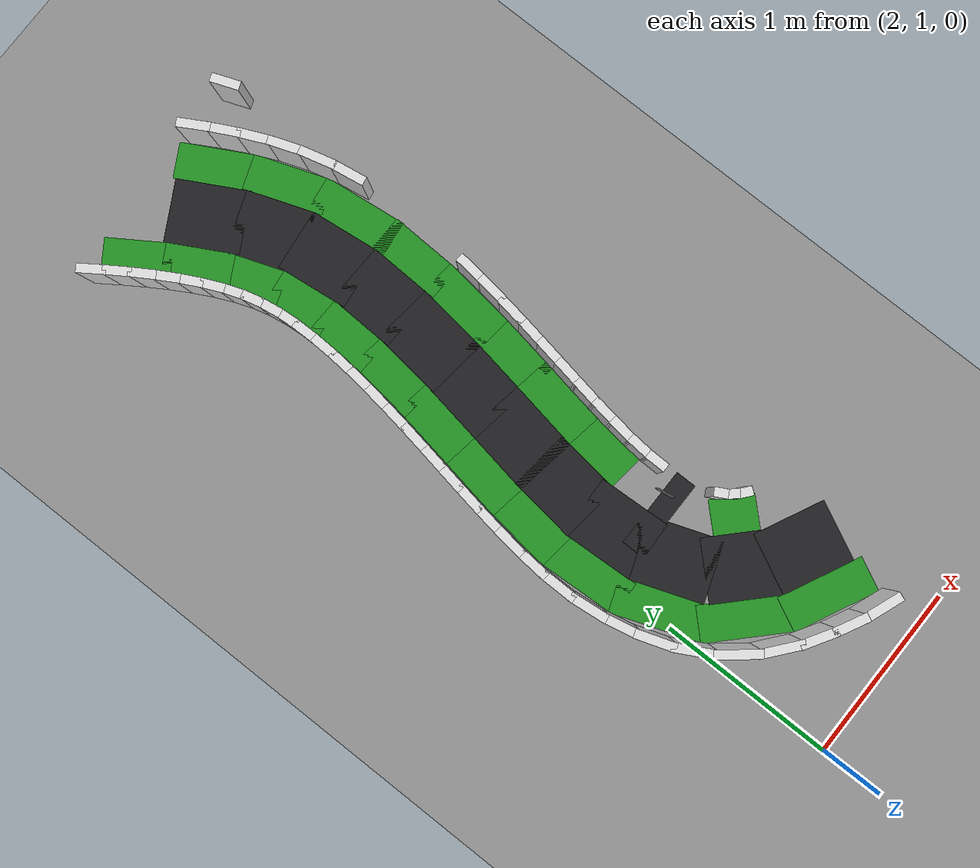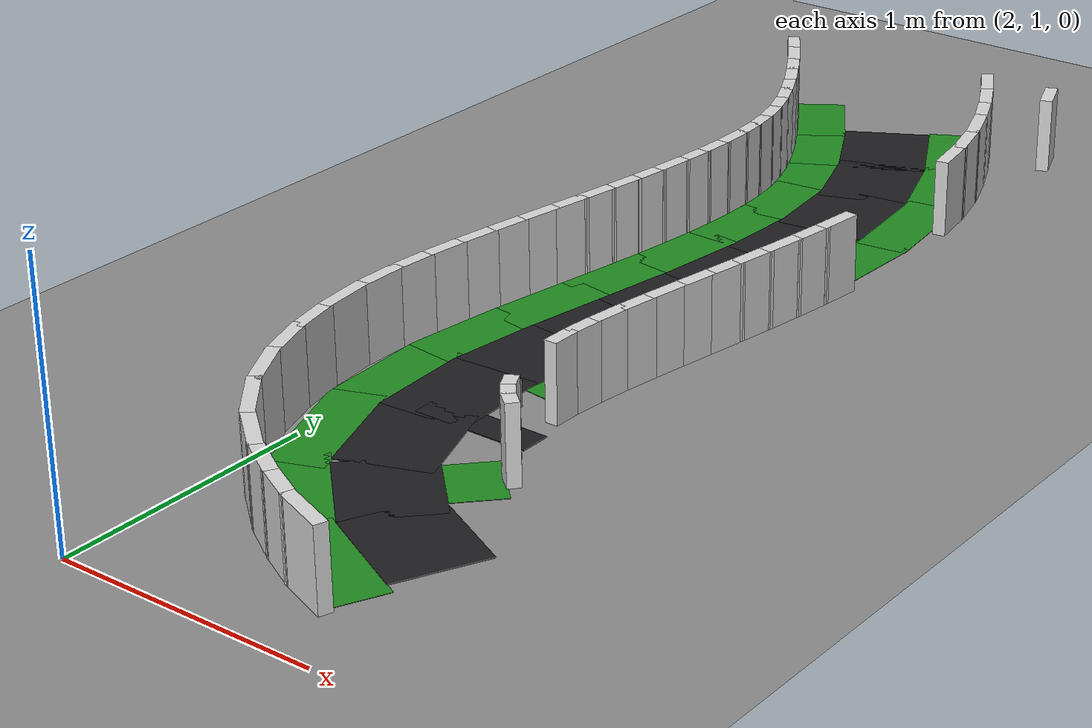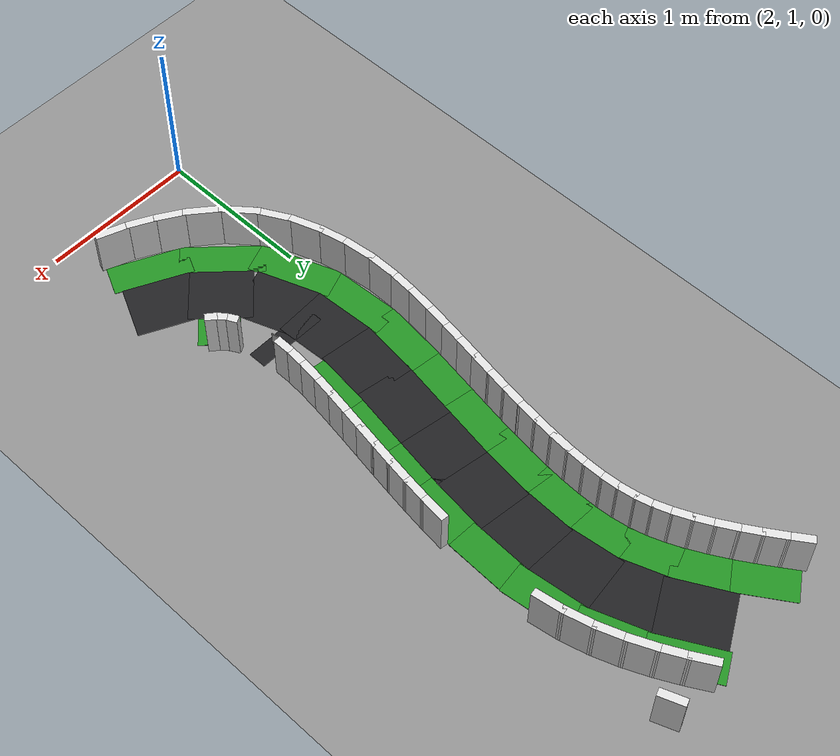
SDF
<sdf version="1.8">
 <world name="it_arena_track">
  <model name="it_arena_track_static">
   <static>true</static>
   <link name="ground_plane_link">
    <collision name="ground_collision">
     <geometry><plane><normal>0 0 1</normal><size>30 30</size></plane></geometry>
    </collision>
    <visual name="ground_visual">
     <geometry><plane><normal>0 0 1</normal><size>30 30</size></plane></geometry>
     <material><ambient>0.55 0.55 0.55 1</ambient><diffuse>0.55 0.55 0.55 1</diffuse></material>
    </visual>
   </link>
   <link name="surface_main_85">
    <pose>2.1909 5.2769 0.0015 0 0 -1.07373</pose>
    <collision name="surface_main_85_col">
     <geometry><box><size>0.4137 0.3500 0.0030</size></box></geometry>
    </collision>
    <visual name="surface_main_85_vis">
     <geometry><box><size>0.4137 0.3500 0.0030</size></box></geometry>
     <material><ambient>0.12 0.12 0.13 1</ambient><diffuse>0.12 0.12 0.13 1</diffuse></material>
    </visual>
   </link>
   <link name="surface_main_86">
    <pose>2.3340 4.9590 0.0015 0 0 -1.22621</pose>
    <collision name="surface_main_86_col">
     <geometry><box><size>0.3903 0.3500 0.0030</size></box></geometry>
    </collision>
    <visual name="surface_main_86_vis">
     <geometry><box><size>0.3903 0.3500 0.0030</size></box></geometry>
     <material><ambient>0.12 0.12 0.13 1</ambient><diffuse>0.12 0.12 0.13 1</diffuse></material>
    </visual>
   </link>
   <link name="surface_main_87">
    <pose>2.4124 4.6209 0.0015 0 0 -1.45323</pose>
    <collision name="surface_main_87_col">
     <geometry><box><size>0.4132 0.3500 0.0030</size></box></geometry>
    </collision>
    <visual name="surface_main_87_vis">
     <geometry><box><size>0.4132 0.3500 0.0030</size></box></geometry>
     <material><ambient>0.12 0.12 0.13 1</ambient><diffuse>0.12 0.12 0.13 1</diffuse></material>
    </visual>
   </link>
   <link name="surface_main_88">
    <pose>2.4273 4.2727 0.0015 0 0 -1.60720</pose>
    <collision name="surface_main_88_col">
     <geometry><box><size>0.3908 0.3500 0.0030</size></box></geometry>
    </collision>
    <visual name="surface_main_88_vis">
     <geometry><box><size>0.3908 0.3500 0.0030</size></box></geometry>
     <material><ambient>0.12 0.12 0.13 1</ambient><diffuse>0.12 0.12 0.13 1</diffuse></material>
    </visual>
   </link>
   <link name="surface_main_89">
    <pose>2.3994 3.9243 0.0015 0 0 -1.69189</pose>
    <collision name="surface_main_89_col">
     <geometry><box><size>0.4139 0.3500 0.0030</size></box></geometry>
    </collision>
    <visual name="surface_main_89_vis">
     <geometry><box><size>0.4139 0.3500 0.0030</size></box></geometry>
     <material><ambient>0.12 0.12 0.13 1</ambient><diffuse>0.12 0.12 0.13 1</diffuse></material>
    </visual>
   </link>
   <link name="surface_main_90">
    <pose>2.3502 3.5779 0.0015 0 0 -1.73290</pose>
    <collision name="surface_main_90_col">
     <geometry><box><size>0.3909 0.3500 0.0030</size></box></geometry>
    </collision>
    <visual name="surface_main_90_vis">
     <geometry><box><size>0.3909 0.3500 0.0030</size></box></geometry>
     <material><ambient>0.12 0.12 0.13 1</ambient><diffuse>0.12 0.12 0.13 1</diffuse></material>
    </visual>
   </link>
   <link name="surface_main_91">
    <pose>2.2930 3.2327 0.0015 0 0 -1.73713</pose>
    <collision name="surface_main_91_col">
     <geometry><box><size>0.4139 0.3500 0.0030</size></box></geometry>
    </collision>
    <visual name="surface_main_91_vis">
     <geometry><box><size>0.4139 0.3500 0.0030</size></box></geometry>
     <material><ambient>0.12 0.12 0.13 1</ambient><diffuse>0.12 0.12 0.13 1</diffuse></material>
    </visual>
   </link>
   <link name="surface_main_92">
    <pose>2.2427 2.8865 0.0015 0 0 -1.69157</pose>
    <collision name="surface_main_92_col">
     <geometry><box><size>0.3908 0.3500 0.0030</size></box></geometry>
    </collision>
    <visual name="surface_main_92_vis">
     <geometry><box><size>0.3908 0.3500 0.0030</size></box></geometry>
     <material><ambient>0.12 0.12 0.13 1</ambient><diffuse>0.12 0.12 0.13 1</diffuse></material>
    </visual>
   </link>
   <link name="surface_main_93">
    <pose>2.2316 2.5386 0.0015 0 0 -1.51874</pose>
    <collision name="surface_main_93_col">
     <geometry><box><size>0.4126 0.3500 0.0030</size></box></geometry>
    </collision>
    <visual name="surface_main_93_vis">
     <geometry><box><size>0.4126 0.3500 0.0030</size></box></geometry>
     <material><ambient>0.12 0.12 0.13 1</ambient><diffuse>0.12 0.12 0.13 1</diffuse></material>
    </visual>
   </link>
   <link name="surface_main_94">
    <pose>2.3019 2.1913 0.0015 0 0 -1.22303</pose>
    <collision name="surface_main_94_col">
     <geometry><box><size>0.4115 0.3500 0.0030</size></box></geometry>
    </collision>
    <visual name="surface_main_94_vis">
     <geometry><box><size>0.4115 0.3500 0.0030</size></box></geometry>
     <material><ambient>0.12 0.12 0.13 1</ambient><diffuse>0.12 0.12 0.13 1</diffuse></material>
    </visual>
   </link>
   <link name="surface_main_95">
    <pose>2.4835 1.9055 0.0015 0 0 -0.77280</pose>
    <collision name="surface_main_95_col">
     <geometry><box><size>0.3874 0.3500 0.0030</size></box></geometry>
    </collision>
    <visual name="surface_main_95_vis">
     <geometry><box><size>0.3874 0.3500 0.0030</size></box></geometry>
     <material><ambient>0.12 0.12 0.13 1</ambient><diffuse>0.12 0.12 0.13 1</diffuse></material>
    </visual>
   </link>
   <link name="surface_main_96">
    <pose>2.7653 1.7090 0.0015 0 0 -0.45499</pose>
    <collision name="surface_main_96_col">
     <geometry><box><size>0.4129 0.3500 0.0030</size></box></geometry>
    </collision>
    <visual name="surface_main_96_vis">
     <geometry><box><size>0.4129 0.3500 0.0030</size></box></geometry>
     <material><ambient>0.12 0.12 0.13 1</ambient><diffuse>0.12 0.12 0.13 1</diffuse></material>
    </visual>
   </link>
   <link name="surface_branch1_0">
    <pose>2.4339 2.4085 0.0015 0 0 0.00000</pose>
    <collision name="surface_branch1_0_col">
     <geometry><box><size>0.4644 0.1200 0.0030</size></box></geometry>
    </collision>
    <visual name="surface_branch1_0_vis">
     <geometry><box><size>0.4644 0.1200 0.0030</size></box></geometry>
     <material><ambient>0.12 0.12 0.13 1</ambient><diffuse>0.12 0.12 0.13 1</diffuse></material>
    </visual>
   </link>
   <link name="grass_main_left_85">
    <pose>2.4331 5.4061 0.0010 0 0 -1.07430</pose>
    <collision name="grass_main_left_85_col">
     <geometry><box><size>0.4506 0.2000 0.0020</size></box></geometry>
    </collision>
    <visual name="grass_main_left_85_vis">
     <geometry><box><size>0.4506 0.2000 0.0020</size></box></geometry>
     <material><ambient>0.13 0.55 0.13 1</ambient><diffuse>0.13 0.55 0.13 1</diffuse></material>
    </visual>
   </link>
   <link name="grass_main_left_86">
    <pose>2.5926 5.0487 0.0010 0 0 -1.22770</pose>
    <collision name="grass_main_left_86_col">
     <geometry><box><size>0.4523 0.2000 0.0020</size></box></geometry>
    </collision>
    <visual name="grass_main_left_86_vis">
     <geometry><box><size>0.4523 0.2000 0.0020</size></box></geometry>
     <material><ambient>0.13 0.55 0.13 1</ambient><diffuse>0.13 0.55 0.13 1</diffuse></material>
    </visual>
   </link>
   <link name="grass_main_left_87">
    <pose>2.6836 4.6563 0.0010 0 0 -1.45152</pose>
    <collision name="grass_main_left_87_col">
     <geometry><box><size>0.4799 0.2000 0.0020</size></box></geometry>
    </collision>
    <visual name="grass_main_left_87_vis">
     <geometry><box><size>0.4799 0.2000 0.0020</size></box></geometry>
     <material><ambient>0.13 0.55 0.13 1</ambient><diffuse>0.13 0.55 0.13 1</diffuse></material>
    </visual>
   </link>
   <link name="grass_main_left_88">
    <pose>2.7018 4.2644 0.0010 0 0 -1.60672</pose>
    <collision name="grass_main_left_88_col">
     <geometry><box><size>0.4252 0.2000 0.0020</size></box></geometry>
    </collision>
    <visual name="grass_main_left_88_vis">
     <geometry><box><size>0.4252 0.2000 0.0020</size></box></geometry>
     <material><ambient>0.13 0.55 0.13 1</ambient><diffuse>0.13 0.55 0.13 1</diffuse></material>
    </visual>
   </link>
   <link name="grass_main_left_89">
    <pose>2.6724 3.8921 0.0010 0 0 -1.69172</pose>
    <collision name="grass_main_left_89_col">
     <geometry><box><size>0.4345 0.2000 0.0020</size></box></geometry>
    </collision>
    <visual name="grass_main_left_89_vis">
     <geometry><box><size>0.4345 0.2000 0.0020</size></box></geometry>
     <material><ambient>0.13 0.55 0.13 1</ambient><diffuse>0.13 0.55 0.13 1</diffuse></material>
    </visual>
   </link>
   <link name="grass_main_left_90">
    <pose>2.6217 3.5341 0.0010 0 0 -1.73287</pose>
    <collision name="grass_main_left_90_col">
     <geometry><box><size>0.3973 0.2000 0.0020</size></box></geometry>
    </collision>
    <visual name="grass_main_left_90_vis">
     <geometry><box><size>0.3973 0.2000 0.0020</size></box></geometry>
     <material><ambient>0.13 0.55 0.13 1</ambient><diffuse>0.13 0.55 0.13 1</diffuse></material>
    </visual>
   </link>
   <link name="grass_main_left_91">
    <pose>2.5644 3.1885 0.0010 0 0 -1.73720</pose>
    <collision name="grass_main_left_91_col">
     <geometry><box><size>0.4085 0.2000 0.0020</size></box></geometry>
    </collision>
    <visual name="grass_main_left_91_vis">
     <geometry><box><size>0.4085 0.2000 0.0020</size></box></geometry>
     <material><ambient>0.13 0.55 0.13 1</ambient><diffuse>0.13 0.55 0.13 1</diffuse></material>
    </visual>
   </link>
   <link name="grass_main_left_92">
    <pose>2.5158 2.8564 0.0010 0 0 -1.69241</pose>
    <collision name="grass_main_left_92_col">
     <geometry><box><size>0.3635 0.2000 0.0020</size></box></geometry>
    </collision>
    <visual name="grass_main_left_92_vis">
     <geometry><box><size>0.3635 0.2000 0.0020</size></box></geometry>
     <material><ambient>0.13 0.55 0.13 1</ambient><diffuse>0.13 0.55 0.13 1</diffuse></material>
    </visual>
   </link>
   <link name="grass_main_left_93">
    <pose>2.6731 2.0954 0.0010 0 0 -0.76638</pose>
    <collision name="grass_main_left_93_col">
     <geometry><box><size>0.2499 0.2000 0.0020</size></box></geometry>
    </collision>
    <visual name="grass_main_left_93_vis">
     <geometry><box><size>0.2499 0.2000 0.0020</size></box></geometry>
     <material><ambient>0.13 0.55 0.13 1</ambient><diffuse>0.13 0.55 0.13 1</diffuse></material>
    </visual>
   </link>
   <link name="grass_main_right_78">
    <pose>1.7817 5.4273 0.0010 0 0 -0.99125</pose>
    <collision name="grass_main_right_78_col">
     <geometry><box><size>0.3730 0.2000 0.0020</size></box></geometry>
    </collision>
    <visual name="grass_main_right_78_vis">
     <geometry><box><size>0.3730 0.2000 0.0020</size></box></geometry>
     <material><ambient>0.13 0.55 0.13 1</ambient><diffuse>0.13 0.55 0.13 1</diffuse></material>
    </visual>
   </link>
   <link name="grass_main_right_79">
    <pose>1.9487 5.1477 0.0010 0 0 -1.07305</pose>
    <collision name="grass_main_right_79_col">
     <geometry><box><size>0.3768 0.2000 0.0020</size></box></geometry>
    </collision>
    <visual name="grass_main_right_79_vis">
     <geometry><box><size>0.3768 0.2000 0.0020</size></box></geometry>
     <material><ambient>0.13 0.55 0.13 1</ambient><diffuse>0.13 0.55 0.13 1</diffuse></material>
    </visual>
   </link>
   <link name="grass_main_right_80">
    <pose>2.0755 4.8694 0.0010 0 0 -1.22415</pose>
    <collision name="grass_main_right_80_col">
     <geometry><box><size>0.3284 0.2000 0.0020</size></box></geometry>
    </collision>
    <visual name="grass_main_right_80_vis">
     <geometry><box><size>0.3284 0.2000 0.0020</size></box></geometry>
     <material><ambient>0.13 0.55 0.13 1</ambient><diffuse>0.13 0.55 0.13 1</diffuse></material>
    </visual>
   </link>
   <link name="grass_main_right_81">
    <pose>2.1413 4.5855 0.0010 0 0 -1.45560</pose>
    <collision name="grass_main_right_81_col">
     <geometry><box><size>0.3464 0.2000 0.0020</size></box></geometry>
    </collision>
    <visual name="grass_main_right_81_vis">
     <geometry><box><size>0.3464 0.2000 0.0020</size></box></geometry>
     <material><ambient>0.13 0.55 0.13 1</ambient><diffuse>0.13 0.55 0.13 1</diffuse></material>
    </visual>
   </link>
   <link name="grass_main_right_82">
    <pose>2.1529 4.2811 0.0010 0 0 -1.60778</pose>
    <collision name="grass_main_right_82_col">
     <geometry><box><size>0.3563 0.2000 0.0020</size></box></geometry>
    </collision>
    <visual name="grass_main_right_82_vis">
     <geometry><box><size>0.3563 0.2000 0.0020</size></box></geometry>
     <material><ambient>0.13 0.55 0.13 1</ambient><diffuse>0.13 0.55 0.13 1</diffuse></material>
    </visual>
   </link>
   <link name="grass_main_right_83">
    <pose>2.1264 3.9565 0.0010 0 0 -1.69208</pose>
    <collision name="grass_main_right_83_col">
     <geometry><box><size>0.3933 0.2000 0.0020</size></box></geometry>
    </collision>
    <visual name="grass_main_right_83_vis">
     <geometry><box><size>0.3933 0.2000 0.0020</size></box></geometry>
     <material><ambient>0.13 0.55 0.13 1</ambient><diffuse>0.13 0.55 0.13 1</diffuse></material>
    </visual>
   </link>
   <link name="grass_main_right_84">
    <pose>2.0788 3.6217 0.0010 0 0 -1.73294</pose>
    <collision name="grass_main_right_84_col">
     <geometry><box><size>0.3846 0.2000 0.0020</size></box></geometry>
    </collision>
    <visual name="grass_main_right_84_vis">
     <geometry><box><size>0.3846 0.2000 0.0020</size></box></geometry>
     <material><ambient>0.13 0.55 0.13 1</ambient><diffuse>0.13 0.55 0.13 1</diffuse></material>
    </visual>
   </link>
   <link name="grass_main_right_85">
    <pose>2.0216 3.2769 0.0010 0 0 -1.73706</pose>
    <collision name="grass_main_right_85_col">
     <geometry><box><size>0.4194 0.2000 0.0020</size></box></geometry>
    </collision>
    <visual name="grass_main_right_85_vis">
     <geometry><box><size>0.4194 0.2000 0.0020</size></box></geometry>
     <material><ambient>0.13 0.55 0.13 1</ambient><diffuse>0.13 0.55 0.13 1</diffuse></material>
    </visual>
   </link>
   <link name="grass_main_right_86">
    <pose>1.9696 2.9165 0.0010 0 0 -1.69084</pose>
    <collision name="grass_main_right_86_col">
     <geometry><box><size>0.4182 0.2000 0.0020</size></box></geometry>
    </collision>
    <visual name="grass_main_right_86_vis">
     <geometry><box><size>0.4182 0.2000 0.0020</size></box></geometry>
     <material><ambient>0.13 0.55 0.13 1</ambient><diffuse>0.13 0.55 0.13 1</diffuse></material>
    </visual>
   </link>
   <link name="grass_main_right_87">
    <pose>1.9593 2.5219 0.0010 0 0 -1.51721</pose>
    <collision name="grass_main_right_87_col">
     <geometry><box><size>0.4932 0.2000 0.0020</size></box></geometry>
    </collision>
    <visual name="grass_main_right_87_vis">
     <geometry><box><size>0.4932 0.2000 0.0020</size></box></geometry>
     <material><ambient>0.13 0.55 0.13 1</ambient><diffuse>0.13 0.55 0.13 1</diffuse></material>
    </visual>
   </link>
   <link name="grass_main_right_88">
    <pose>2.0509 2.0915 0.0010 0 0 -1.21621</pose>
    <collision name="grass_main_right_88_col">
     <geometry><box><size>0.5303 0.2000 0.0020</size></box></geometry>
    </collision>
    <visual name="grass_main_right_88_vis">
     <geometry><box><size>0.5303 0.2000 0.0020</size></box></geometry>
     <material><ambient>0.13 0.55 0.13 1</ambient><diffuse>0.13 0.55 0.13 1</diffuse></material>
    </visual>
   </link>
   <link name="grass_main_right_89">
    <pose>2.2938 1.7155 0.0010 0 0 -0.77586</pose>
    <collision name="grass_main_right_89_col">
     <geometry><box><size>0.5249 0.2000 0.0020</size></box></geometry>
    </collision>
    <visual name="grass_main_right_89_vis">
     <geometry><box><size>0.5249 0.2000 0.0020</size></box></geometry>
     <material><ambient>0.13 0.55 0.13 1</ambient><diffuse>0.13 0.55 0.13 1</diffuse></material>
    </visual>
   </link>
   <link name="grass_main_right_90">
    <pose>2.6503 1.4617 0.0010 0 0 -0.45174</pose>
    <collision name="grass_main_right_90_col">
     <geometry><box><size>0.4949 0.2000 0.0020</size></box></geometry>
    </collision>
    <visual name="grass_main_right_90_vis">
     <geometry><box><size>0.4949 0.2000 0.0020</size></box></geometry>
     <material><ambient>0.13 0.55 0.13 1</ambient><diffuse>0.13 0.55 0.13 1</diffuse></material>
    </visual>
   </link>
   <link name="walls_main_left_174">
    <pose>2.7849 5.5522 0.1500 0 0 1.93085</pose>
    <collision name="walls_main_left_174_col">
     <geometry><box><size>0.1598 0.0500 0.3000</size></box></geometry>
     <surface><friction><ode><mu>0.8</mu><mu2>0.8</mu2></ode></friction></surface>
    </collision>
    <visual name="walls_main_left_174_vis">
     <geometry><box><size>0.1598 0.0500 0.3000</size></box></geometry>
     <material><ambient>0.85 0.85 0.85 1</ambient><diffuse>0.85 0.85 0.85 1</diffuse></material>
    </visual>
   </link>
   <link name="walls_main_left_213">
    <pose>2.5077 5.5387 0.1500 0 0 -1.05072</pose>
    <collision name="walls_main_left_213_col">
     <geometry><box><size>0.1790 0.0500 0.3000</size></box></geometry>
     <surface><friction><ode><mu>0.8</mu><mu2>0.8</mu2></ode></friction></surface>
    </collision>
    <visual name="walls_main_left_213_vis">
     <geometry><box><size>0.1790 0.0500 0.3000</size></box></geometry>
     <material><ambient>0.85 0.85 0.85 1</ambient><diffuse>0.85 0.85 0.85 1</diffuse></material>
    </visual>
   </link>
   <link name="walls_main_left_214">
    <pose>2.5830 5.4001 0.1500 0 0 -1.09480</pose>
    <collision name="walls_main_left_214_col">
     <geometry><box><size>0.1839 0.0500 0.3000</size></box></geometry>
     <surface><friction><ode><mu>0.8</mu><mu2>0.8</mu2></ode></friction></surface>
    </collision>
    <visual name="walls_main_left_214_vis">
     <geometry><box><size>0.1839 0.0500 0.3000</size></box></geometry>
     <material><ambient>0.85 0.85 0.85 1</ambient><diffuse>0.85 0.85 0.85 1</diffuse></material>
    </visual>
   </link>
   <link name="walls_main_left_215">
    <pose>2.6535 5.2531 0.1500 0 0 -1.15039</pose>
    <collision name="walls_main_left_215_col">
     <geometry><box><size>0.1911 0.0500 0.3000</size></box></geometry>
     <surface><friction><ode><mu>0.8</mu><mu2>0.8</mu2></ode></friction></surface>
    </collision>
    <visual name="walls_main_left_215_vis">
     <geometry><box><size>0.1911 0.0500 0.3000</size></box></geometry>
     <material><ambient>0.85 0.85 0.85 1</ambient><diffuse>0.85 0.85 0.85 1</diffuse></material>
    </visual>
   </link>
   <link name="walls_main_left_216">
    <pose>2.7168 5.0964 0.1500 0 0 -1.22283</pose>
    <collision name="walls_main_left_216_col">
     <geometry><box><size>0.1978 0.0500 0.3000</size></box></geometry>
     <surface><friction><ode><mu>0.8</mu><mu2>0.8</mu2></ode></friction></surface>
    </collision>
    <visual name="walls_main_left_216_vis">
     <geometry><box><size>0.1978 0.0500 0.3000</size></box></geometry>
     <material><ambient>0.85 0.85 0.85 1</ambient><diffuse>0.85 0.85 0.85 1</diffuse></material>
    </visual>
   </link>
   <link name="walls_main_left_217">
    <pose>2.7687 4.9287 0.1500 0 0 -1.31597</pose>
    <collision name="walls_main_left_217_col">
     <geometry><box><size>0.2063 0.0500 0.3000</size></box></geometry>
     <surface><friction><ode><mu>0.8</mu><mu2>0.8</mu2></ode></friction></surface>
    </collision>
    <visual name="walls_main_left_217_vis">
     <geometry><box><size>0.2063 0.0500 0.3000</size></box></geometry>
     <material><ambient>0.85 0.85 0.85 1</ambient><diffuse>0.85 0.85 0.85 1</diffuse></material>
    </visual>
   </link>
   <link name="walls_main_left_218">
    <pose>2.8050 4.7568 0.1500 0 0 -1.41172</pose>
    <collision name="walls_main_left_218_col">
     <geometry><box><size>0.1983 0.0500 0.3000</size></box></geometry>
     <surface><friction><ode><mu>0.8</mu><mu2>0.8</mu2></ode></friction></surface>
    </collision>
    <visual name="walls_main_left_218_vis">
     <geometry><box><size>0.1983 0.0500 0.3000</size></box></geometry>
     <material><ambient>0.85 0.85 0.85 1</ambient><diffuse>0.85 0.85 0.85 1</diffuse></material>
    </visual>
   </link>
   <link name="walls_main_left_223">
    <pose>2.8073 3.9500 0.1500 0 0 -1.68086</pose>
    <collision name="walls_main_left_223_col">
     <geometry><box><size>0.1731 0.0500 0.3000</size></box></geometry>
     <surface><friction><ode><mu>0.8</mu><mu2>0.8</mu2></ode></friction></surface>
    </collision>
    <visual name="walls_main_left_223_vis">
     <geometry><box><size>0.1731 0.0500 0.3000</size></box></geometry>
     <material><ambient>0.85 0.85 0.85 1</ambient><diffuse>0.85 0.85 0.85 1</diffuse></material>
    </visual>
   </link>
   <link name="walls_main_left_224">
    <pose>2.7892 3.8018 0.1500 0 0 -1.70381</pose>
    <collision name="walls_main_left_224_col">
     <geometry><box><size>0.1702 0.0500 0.3000</size></box></geometry>
     <surface><friction><ode><mu>0.8</mu><mu2>0.8</mu2></ode></friction></surface>
    </collision>
    <visual name="walls_main_left_224_vis">
     <geometry><box><size>0.1702 0.0500 0.3000</size></box></geometry>
     <material><ambient>0.85 0.85 0.85 1</ambient><diffuse>0.85 0.85 0.85 1</diffuse></material>
    </visual>
   </link>
   <link name="walls_main_left_225">
    <pose>2.7684 3.6561 0.1500 0 0 -1.72165</pose>
    <collision name="walls_main_left_225_col">
     <geometry><box><size>0.1684 0.0500 0.3000</size></box></geometry>
     <surface><friction><ode><mu>0.8</mu><mu2>0.8</mu2></ode></friction></surface>
    </collision>
    <visual name="walls_main_left_225_vis">
     <geometry><box><size>0.1684 0.0500 0.3000</size></box></geometry>
     <material><ambient>0.85 0.85 0.85 1</ambient><diffuse>0.85 0.85 0.85 1</diffuse></material>
    </visual>
   </link>
   <link name="walls_main_left_226">
    <pose>2.7457 3.5126 0.1500 0 0 -1.73434</pose>
    <collision name="walls_main_left_226_col">
     <geometry><box><size>0.1657 0.0500 0.3000</size></box></geometry>
     <surface><friction><ode><mu>0.8</mu><mu2>0.8</mu2></ode></friction></surface>
    </collision>
    <visual name="walls_main_left_226_vis">
     <geometry><box><size>0.1657 0.0500 0.3000</size></box></geometry>
     <material><ambient>0.85 0.85 0.85 1</ambient><diffuse>0.85 0.85 0.85 1</diffuse></material>
    </visual>
   </link>
   <link name="walls_main_left_227">
    <pose>2.7221 3.3722 0.1500 0 0 -1.74024</pose>
    <collision name="walls_main_left_227_col">
     <geometry><box><size>0.1619 0.0500 0.3000</size></box></geometry>
     <surface><friction><ode><mu>0.8</mu><mu2>0.8</mu2></ode></friction></surface>
    </collision>
    <visual name="walls_main_left_227_vis">
     <geometry><box><size>0.1619 0.0500 0.3000</size></box></geometry>
     <material><ambient>0.85 0.85 0.85 1</ambient><diffuse>0.85 0.85 0.85 1</diffuse></material>
    </visual>
   </link>
   <link name="walls_main_left_228">
    <pose>2.6984 3.2342 0.1500 0 0 -1.74112</pose>
    <collision name="walls_main_left_228_col">
     <geometry><box><size>0.1601 0.0500 0.3000</size></box></geometry>
     <surface><friction><ode><mu>0.8</mu><mu2>0.8</mu2></ode></friction></surface>
    </collision>
    <visual name="walls_main_left_228_vis">
     <geometry><box><size>0.1601 0.0500 0.3000</size></box></geometry>
     <material><ambient>0.85 0.85 0.85 1</ambient><diffuse>0.85 0.85 0.85 1</diffuse></material>
    </visual>
   </link>
   <link name="walls_main_left_229">
    <pose>2.6755 3.0986 0.1500 0 0 -1.73464</pose>
    <collision name="walls_main_left_229_col">
     <geometry><box><size>0.1563 0.0500 0.3000</size></box></geometry>
     <surface><friction><ode><mu>0.8</mu><mu2>0.8</mu2></ode></friction></surface>
    </collision>
    <visual name="walls_main_left_229_vis">
     <geometry><box><size>0.1563 0.0500 0.3000</size></box></geometry>
     <material><ambient>0.85 0.85 0.85 1</ambient><diffuse>0.85 0.85 0.85 1</diffuse></material>
    </visual>
   </link>
   <link name="walls_main_left_230">
    <pose>2.6546 2.9664 0.1500 0 0 -1.72071</pose>
    <collision name="walls_main_left_230_col">
     <geometry><box><size>0.1514 0.0500 0.3000</size></box></geometry>
     <surface><friction><ode><mu>0.8</mu><mu2>0.8</mu2></ode></friction></surface>
    </collision>
    <visual name="walls_main_left_230_vis">
     <geometry><box><size>0.1514 0.0500 0.3000</size></box></geometry>
     <material><ambient>0.85 0.85 0.85 1</ambient><diffuse>0.85 0.85 0.85 1</diffuse></material>
    </visual>
   </link>
   <link name="walls_main_left_231">
    <pose>2.6368 2.8381 0.1500 0 0 -1.69549</pose>
    <collision name="walls_main_left_231_col">
     <geometry><box><size>0.1466 0.0500 0.3000</size></box></geometry>
     <surface><friction><ode><mu>0.8</mu><mu2>0.8</mu2></ode></friction></surface>
    </collision>
    <visual name="walls_main_left_231_vis">
     <geometry><box><size>0.1466 0.0500 0.3000</size></box></geometry>
     <material><ambient>0.85 0.85 0.85 1</ambient><diffuse>0.85 0.85 0.85 1</diffuse></material>
    </visual>
   </link>
   <link name="walls_main_left_232">
    <pose>2.6242 2.7160 0.1500 0 0 -1.65089</pose>
    <collision name="walls_main_left_232_col">
     <geometry><box><size>0.1359 0.0500 0.3000</size></box></geometry>
     <surface><friction><ode><mu>0.8</mu><mu2>0.8</mu2></ode></friction></surface>
    </collision>
    <visual name="walls_main_left_232_vis">
     <geometry><box><size>0.1359 0.0500 0.3000</size></box></geometry>
     <material><ambient>0.85 0.85 0.85 1</ambient><diffuse>0.85 0.85 0.85 1</diffuse></material>
    </visual>
   </link>
   <link name="walls_main_left_233">
    <pose>2.6191 2.6064 0.1500 0 0 -1.57730</pose>
    <collision name="walls_main_left_233_col">
     <geometry><box><size>0.1168 0.0500 0.3000</size></box></geometry>
     <surface><friction><ode><mu>0.8</mu><mu2>0.8</mu2></ode></friction></surface>
    </collision>
    <visual name="walls_main_left_233_vis">
     <geometry><box><size>0.1168 0.0500 0.3000</size></box></geometry>
     <material><ambient>0.85 0.85 0.85 1</ambient><diffuse>0.85 0.85 0.85 1</diffuse></material>
    </visual>
   </link>
   <link name="walls_main_left_234">
    <pose>2.6917 2.2561 0.1500 0 0 -1.08141</pose>
    <collision name="walls_main_left_234_col">
     <geometry><box><size>0.0757 0.0500 0.3000</size></box></geometry>
     <surface><friction><ode><mu>0.8</mu><mu2>0.8</mu2></ode></friction></surface>
    </collision>
    <visual name="walls_main_left_234_vis">
     <geometry><box><size>0.0757 0.0500 0.3000</size></box></geometry>
     <material><ambient>0.85 0.85 0.85 1</ambient><diffuse>0.85 0.85 0.85 1</diffuse></material>
    </visual>
   </link>
   <link name="walls_main_left_235">
    <pose>2.7261 2.2044 0.1500 0 0 -0.87490</pose>
    <collision name="walls_main_left_235_col">
     <geometry><box><size>0.0680 0.0500 0.3000</size></box></geometry>
     <surface><friction><ode><mu>0.8</mu><mu2>0.8</mu2></ode></friction></surface>
    </collision>
    <visual name="walls_main_left_235_vis">
     <geometry><box><size>0.0680 0.0500 0.3000</size></box></geometry>
     <material><ambient>0.85 0.85 0.85 1</ambient><diffuse>0.85 0.85 0.85 1</diffuse></material>
    </visual>
   </link>
   <link name="walls_main_left_236">
    <pose>2.7703 2.1613 0.1500 0 0 -0.67982</pose>
    <collision name="walls_main_left_236_col">
     <geometry><box><size>0.0749 0.0500 0.3000</size></box></geometry>
     <surface><friction><ode><mu>0.8</mu><mu2>0.8</mu2></ode></friction></surface>
    </collision>
    <visual name="walls_main_left_236_vis">
     <geometry><box><size>0.0749 0.0500 0.3000</size></box></geometry>
     <material><ambient>0.85 0.85 0.85 1</ambient><diffuse>0.85 0.85 0.85 1</diffuse></material>
    </visual>
   </link>
   <link name="walls_main_right_195">
    <pose>1.6054 5.4690 0.1500 0 0 -0.97120</pose>
    <collision name="walls_main_right_195_col">
     <geometry><box><size>0.1543 0.0500 0.3000</size></box></geometry>
     <surface><friction><ode><mu>0.8</mu><mu2>0.8</mu2></ode></friction></surface>
    </collision>
    <visual name="walls_main_right_195_vis">
     <geometry><box><size>0.1543 0.0500 0.3000</size></box></geometry>
     <material><ambient>0.85 0.85 0.85 1</ambient><diffuse>0.85 0.85 0.85 1</diffuse></material>
    </visual>
   </link>
   <link name="walls_main_right_196">
    <pose>1.6793 5.3588 0.1500 0 0 -0.98910</pose>
    <collision name="walls_main_right_196_col">
     <geometry><box><size>0.1507 0.0500 0.3000</size></box></geometry>
     <surface><friction><ode><mu>0.8</mu><mu2>0.8</mu2></ode></friction></surface>
    </collision>
    <visual name="walls_main_right_196_vis">
     <geometry><box><size>0.1507 0.0500 0.3000</size></box></geometry>
     <material><ambient>0.85 0.85 0.85 1</ambient><diffuse>0.85 0.85 0.85 1</diffuse></material>
    </visual>
   </link>
   <link name="walls_main_right_197">
    <pose>1.7490 5.2497 0.1500 0 0 -1.01673</pose>
    <collision name="walls_main_right_197_col">
     <geometry><box><size>0.1471 0.0500 0.3000</size></box></geometry>
     <surface><friction><ode><mu>0.8</mu><mu2>0.8</mu2></ode></friction></surface>
    </collision>
    <visual name="walls_main_right_197_vis">
     <geometry><box><size>0.1471 0.0500 0.3000</size></box></geometry>
     <material><ambient>0.85 0.85 0.85 1</ambient><diffuse>0.85 0.85 0.85 1</diffuse></material>
    </visual>
   </link>
   <link name="walls_main_right_198">
    <pose>1.8135 5.1413 0.1500 0 0 -1.05067</pose>
    <collision name="walls_main_right_198_col">
     <geometry><box><size>0.1430 0.0500 0.3000</size></box></geometry>
     <surface><friction><ode><mu>0.8</mu><mu2>0.8</mu2></ode></friction></surface>
    </collision>
    <visual name="walls_main_right_198_vis">
     <geometry><box><size>0.1430 0.0500 0.3000</size></box></geometry>
     <material><ambient>0.85 0.85 0.85 1</ambient><diffuse>0.85 0.85 0.85 1</diffuse></material>
    </visual>
   </link>
   <link name="walls_main_right_199">
    <pose>1.8719 5.0341 0.1500 0 0 -1.09459</pose>
    <collision name="walls_main_right_199_col">
     <geometry><box><size>0.1380 0.0500 0.3000</size></box></geometry>
     <surface><friction><ode><mu>0.8</mu><mu2>0.8</mu2></ode></friction></surface>
    </collision>
    <visual name="walls_main_right_199_vis">
     <geometry><box><size>0.1380 0.0500 0.3000</size></box></geometry>
     <material><ambient>0.85 0.85 0.85 1</ambient><diffuse>0.85 0.85 0.85 1</diffuse></material>
    </visual>
   </link>
   <link name="walls_main_right_200">
    <pose>1.9227 4.9289 0.1500 0 0 -1.14909</pose>
    <collision name="walls_main_right_200_col">
     <geometry><box><size>0.1308 0.0500 0.3000</size></box></geometry>
     <surface><friction><ode><mu>0.8</mu><mu2>0.8</mu2></ode></friction></surface>
    </collision>
    <visual name="walls_main_right_200_vis">
     <geometry><box><size>0.1308 0.0500 0.3000</size></box></geometry>
     <material><ambient>0.85 0.85 0.85 1</ambient><diffuse>0.85 0.85 0.85 1</diffuse></material>
    </visual>
   </link>
   <link name="walls_main_right_201">
    <pose>1.9644 4.8263 0.1500 0 0 -1.22085</pose>
    <collision name="walls_main_right_201_col">
     <geometry><box><size>0.1240 0.0500 0.3000</size></box></geometry>
     <surface><friction><ode><mu>0.8</mu><mu2>0.8</mu2></ode></friction></surface>
    </collision>
    <visual name="walls_main_right_201_vis">
     <geometry><box><size>0.1240 0.0500 0.3000</size></box></geometry>
     <material><ambient>0.85 0.85 0.85 1</ambient><diffuse>0.85 0.85 0.85 1</diffuse></material>
    </visual>
   </link>
   <link name="walls_main_right_202">
    <pose>1.9956 4.7271 0.1500 0 0 -1.31622</pose>
    <collision name="walls_main_right_202_col">
     <geometry><box><size>0.1155 0.0500 0.3000</size></box></geometry>
     <surface><friction><ode><mu>0.8</mu><mu2>0.8</mu2></ode></friction></surface>
    </collision>
    <visual name="walls_main_right_202_vis">
     <geometry><box><size>0.1155 0.0500 0.3000</size></box></geometry>
     <material><ambient>0.85 0.85 0.85 1</ambient><diffuse>0.85 0.85 0.85 1</diffuse></material>
    </visual>
   </link>
   <link name="walls_main_right_203">
    <pose>2.0165 4.6254 0.1500 0 0 -1.41534</pose>
    <collision name="walls_main_right_203_col">
     <geometry><box><size>0.1235 0.0500 0.3000</size></box></geometry>
     <surface><friction><ode><mu>0.8</mu><mu2>0.8</mu2></ode></friction></surface>
    </collision>
    <visual name="walls_main_right_203_vis">
     <geometry><box><size>0.1235 0.0500 0.3000</size></box></geometry>
     <material><ambient>0.85 0.85 0.85 1</ambient><diffuse>0.85 0.85 0.85 1</diffuse></material>
    </visual>
   </link>
   <link name="walls_main_right_204">
    <pose>2.0287 4.5214 0.1500 0 0 -1.49531</pose>
    <collision name="walls_main_right_204_col">
     <geometry><box><size>0.1178 0.0500 0.3000</size></box></geometry>
     <surface><friction><ode><mu>0.8</mu><mu2>0.8</mu2></ode></friction></surface>
    </collision>
    <visual name="walls_main_right_204_vis">
     <geometry><box><size>0.1178 0.0500 0.3000</size></box></geometry>
     <material><ambient>0.85 0.85 0.85 1</ambient><diffuse>0.85 0.85 0.85 1</diffuse></material>
    </visual>
   </link>
   <link name="walls_main_right_205">
    <pose>2.0332 4.4095 0.1500 0 0 -1.56006</pose>
    <collision name="walls_main_right_205_col">
     <geometry><box><size>0.1399 0.0500 0.3000</size></box></geometry>
     <surface><friction><ode><mu>0.8</mu><mu2>0.8</mu2></ode></friction></surface>
    </collision>
    <visual name="walls_main_right_205_vis">
     <geometry><box><size>0.1399 0.0500 0.3000</size></box></geometry>
     <material><ambient>0.85 0.85 0.85 1</ambient><diffuse>0.85 0.85 0.85 1</diffuse></material>
    </visual>
   </link>
   <link name="walls_main_right_206">
    <pose>2.0316 4.2878 0.1500 0 0 -1.60866</pose>
    <collision name="walls_main_right_206_col">
     <geometry><box><size>0.1401 0.0500 0.3000</size></box></geometry>
     <surface><friction><ode><mu>0.8</mu><mu2>0.8</mu2></ode></friction></surface>
    </collision>
    <visual name="walls_main_right_206_vis">
     <geometry><box><size>0.1401 0.0500 0.3000</size></box></geometry>
     <material><ambient>0.85 0.85 0.85 1</ambient><diffuse>0.85 0.85 0.85 1</diffuse></material>
    </visual>
   </link>
   <link name="walls_main_right_207">
    <pose>2.0242 4.1642 0.1500 0 0 -1.65057</pose>
    <collision name="walls_main_right_207_col">
     <geometry><box><size>0.1447 0.0500 0.3000</size></box></geometry>
     <surface><friction><ode><mu>0.8</mu><mu2>0.8</mu2></ode></friction></surface>
    </collision>
    <visual name="walls_main_right_207_vis">
     <geometry><box><size>0.1447 0.0500 0.3000</size></box></geometry>
     <material><ambient>0.85 0.85 0.85 1</ambient><diffuse>0.85 0.85 0.85 1</diffuse></material>
    </visual>
   </link>
   <link name="walls_main_right_208">
    <pose>2.0121 4.0371 0.1500 0 0 -1.68101</pose>
    <collision name="walls_main_right_208_col">
     <geometry><box><size>0.1489 0.0500 0.3000</size></box></geometry>
     <surface><friction><ode><mu>0.8</mu><mu2>0.8</mu2></ode></friction></surface>
    </collision>
    <visual name="walls_main_right_208_vis">
     <geometry><box><size>0.1489 0.0500 0.3000</size></box></geometry>
     <material><ambient>0.85 0.85 0.85 1</ambient><diffuse>0.85 0.85 0.85 1</diffuse></material>
    </visual>
   </link>
   <link name="walls_main_right_209">
    <pose>1.9962 3.9074 0.1500 0 0 -1.70388</pose>
    <collision name="walls_main_right_209_col">
     <geometry><box><size>0.1518 0.0500 0.3000</size></box></geometry>
     <surface><friction><ode><mu>0.8</mu><mu2>0.8</mu2></ode></friction></surface>
    </collision>
    <visual name="walls_main_right_209_vis">
     <geometry><box><size>0.1518 0.0500 0.3000</size></box></geometry>
     <material><ambient>0.85 0.85 0.85 1</ambient><diffuse>0.85 0.85 0.85 1</diffuse></material>
    </visual>
   </link>
   <link name="walls_main_right_210">
    <pose>1.9775 3.7760 0.1500 0 0 -1.72168</pose>
    <collision name="walls_main_right_210_col">
     <geometry><box><size>0.1535 0.0500 0.3000</size></box></geometry>
     <surface><friction><ode><mu>0.8</mu><mu2>0.8</mu2></ode></friction></surface>
    </collision>
    <visual name="walls_main_right_210_vis">
     <geometry><box><size>0.1535 0.0500 0.3000</size></box></geometry>
     <material><ambient>0.85 0.85 0.85 1</ambient><diffuse>0.85 0.85 0.85 1</diffuse></material>
    </visual>
   </link>
   <link name="walls_main_right_211">
    <pose>1.9564 3.6430 0.1500 0 0 -1.73433</pose>
    <collision name="walls_main_right_211_col">
     <geometry><box><size>0.1563 0.0500 0.3000</size></box></geometry>
     <surface><friction><ode><mu>0.8</mu><mu2>0.8</mu2></ode></friction></surface>
    </collision>
    <visual name="walls_main_right_211_vis">
     <geometry><box><size>0.1563 0.0500 0.3000</size></box></geometry>
     <material><ambient>0.85 0.85 0.85 1</ambient><diffuse>0.85 0.85 0.85 1</diffuse></material>
    </visual>
   </link>
   <link name="walls_main_right_212">
    <pose>1.9336 3.5073 0.1500 0 0 -1.74023</pose>
    <collision name="walls_main_right_212_col">
     <geometry><box><size>0.1601 0.0500 0.3000</size></box></geometry>
     <surface><friction><ode><mu>0.8</mu><mu2>0.8</mu2></ode></friction></surface>
    </collision>
    <visual name="walls_main_right_212_vis">
     <geometry><box><size>0.1601 0.0500 0.3000</size></box></geometry>
     <material><ambient>0.85 0.85 0.85 1</ambient><diffuse>0.85 0.85 0.85 1</diffuse></material>
    </visual>
   </link>
   <link name="walls_main_right_213">
    <pose>1.9099 3.3694 0.1500 0 0 -1.74112</pose>
    <collision name="walls_main_right_213_col">
     <geometry><box><size>0.1619 0.0500 0.3000</size></box></geometry>
     <surface><friction><ode><mu>0.8</mu><mu2>0.8</mu2></ode></friction></surface>
    </collision>
    <visual name="walls_main_right_213_vis">
     <geometry><box><size>0.1619 0.0500 0.3000</size></box></geometry>
     <material><ambient>0.85 0.85 0.85 1</ambient><diffuse>0.85 0.85 0.85 1</diffuse></material>
    </visual>
   </link>
   <link name="walls_main_right_214">
    <pose>1.8862 3.2289 0.1500 0 0 -1.73463</pose>
    <collision name="walls_main_right_214_col">
     <geometry><box><size>0.1656 0.0500 0.3000</size></box></geometry>
     <surface><friction><ode><mu>0.8</mu><mu2>0.8</mu2></ode></friction></surface>
    </collision>
    <visual name="walls_main_right_214_vis">
     <geometry><box><size>0.1656 0.0500 0.3000</size></box></geometry>
     <material><ambient>0.85 0.85 0.85 1</ambient><diffuse>0.85 0.85 0.85 1</diffuse></material>
    </visual>
   </link>
   <link name="walls_main_right_215">
    <pose>1.8634 3.0845 0.1500 0 0 -1.72051</pose>
    <collision name="walls_main_right_215_col">
     <geometry><box><size>0.1706 0.0500 0.3000</size></box></geometry>
     <surface><friction><ode><mu>0.8</mu><mu2>0.8</mu2></ode></friction></surface>
    </collision>
    <visual name="walls_main_right_215_vis">
     <geometry><box><size>0.1706 0.0500 0.3000</size></box></geometry>
     <material><ambient>0.85 0.85 0.85 1</ambient><diffuse>0.85 0.85 0.85 1</diffuse></material>
    </visual>
   </link>
   <link name="walls_main_right_216">
    <pose>1.8429 2.9355 0.1500 0 0 -1.69505</pose>
    <collision name="walls_main_right_216_col">
     <geometry><box><size>0.1754 0.0500 0.3000</size></box></geometry>
     <surface><friction><ode><mu>0.8</mu><mu2>0.8</mu2></ode></friction></surface>
    </collision>
    <visual name="walls_main_right_216_vis">
     <geometry><box><size>0.1754 0.0500 0.3000</size></box></geometry>
     <material><ambient>0.85 0.85 0.85 1</ambient><diffuse>0.85 0.85 0.85 1</diffuse></material>
    </visual>
   </link>
   <link name="walls_main_right_217">
    <pose>1.8270 2.7792 0.1500 0 0 -1.65063</pose>
    <collision name="walls_main_right_217_col">
     <geometry><box><size>0.1860 0.0500 0.3000</size></box></geometry>
     <surface><friction><ode><mu>0.8</mu><mu2>0.8</mu2></ode></friction></surface>
    </collision>
    <visual name="walls_main_right_217_vis">
     <geometry><box><size>0.1860 0.0500 0.3000</size></box></geometry>
     <material><ambient>0.85 0.85 0.85 1</ambient><diffuse>0.85 0.85 0.85 1</diffuse></material>
    </visual>
   </link>
   <link name="walls_main_right_218">
    <pose>1.8201 2.6095 0.1500 0 0 -1.57618</pose>
    <collision name="walls_main_right_218_col">
     <geometry><box><size>0.2050 0.0500 0.3000</size></box></geometry>
     <surface><friction><ode><mu>0.8</mu><mu2>0.8</mu2></ode></friction></surface>
    </collision>
    <visual name="walls_main_right_218_vis">
     <geometry><box><size>0.2050 0.0500 0.3000</size></box></geometry>
     <material><ambient>0.85 0.85 0.85 1</ambient><diffuse>0.85 0.85 0.85 1</diffuse></material>
    </visual>
   </link>
   <link name="walls_main_right_219">
    <pose>1.8295 2.4265 0.1500 0 0 -1.46495</pose>
    <collision name="walls_main_right_219_col">
     <geometry><box><size>0.2170 0.0500 0.3000</size></box></geometry>
     <surface><friction><ode><mu>0.8</mu><mu2>0.8</mu2></ode></friction></surface>
    </collision>
    <visual name="walls_main_right_219_vis">
     <geometry><box><size>0.2170 0.0500 0.3000</size></box></geometry>
     <material><ambient>0.85 0.85 0.85 1</ambient><diffuse>0.85 0.85 0.85 1</diffuse></material>
    </visual>
   </link>
   <link name="walls_main_right_220">
    <pose>1.8581 2.2454 0.1500 0 0 -1.36079</pose>
    <collision name="walls_main_right_220_col">
     <geometry><box><size>0.2054 0.0500 0.3000</size></box></geometry>
     <surface><friction><ode><mu>0.8</mu><mu2>0.8</mu2></ode></friction></surface>
    </collision>
    <visual name="walls_main_right_220_vis">
     <geometry><box><size>0.2054 0.0500 0.3000</size></box></geometry>
     <material><ambient>0.85 0.85 0.85 1</ambient><diffuse>0.85 0.85 0.85 1</diffuse></material>
    </visual>
   </link>
   <link name="walls_main_right_221">
    <pose>1.9080 2.0659 0.1500 0 0 -1.24356</pose>
    <collision name="walls_main_right_221_col">
     <geometry><box><size>0.2238 0.0500 0.3000</size></box></geometry>
     <surface><friction><ode><mu>0.8</mu><mu2>0.8</mu2></ode></friction></surface>
    </collision>
    <visual name="walls_main_right_221_vis">
     <geometry><box><size>0.2238 0.0500 0.3000</size></box></geometry>
     <material><ambient>0.85 0.85 0.85 1</ambient><diffuse>0.85 0.85 0.85 1</diffuse></material>
    </visual>
   </link>
   <link name="walls_main_right_222">
    <pose>1.9897 1.8795 0.1500 0 0 -1.07928</pose>
    <collision name="walls_main_right_222_col">
     <geometry><box><size>0.2457 0.0500 0.3000</size></box></geometry>
     <surface><friction><ode><mu>0.8</mu><mu2>0.8</mu2></ode></friction></surface>
    </collision>
    <visual name="walls_main_right_222_vis">
     <geometry><box><size>0.2457 0.0500 0.3000</size></box></geometry>
     <material><ambient>0.85 0.85 0.85 1</ambient><diffuse>0.85 0.85 0.85 1</diffuse></material>
    </visual>
   </link>
   <link name="walls_main_right_223">
    <pose>2.1101 1.7003 0.1500 0 0 -0.88222</pose>
    <collision name="walls_main_right_223_col">
     <geometry><box><size>0.2533 0.0500 0.3000</size></box></geometry>
     <surface><friction><ode><mu>0.8</mu><mu2>0.8</mu2></ode></friction></surface>
    </collision>
    <visual name="walls_main_right_223_vis">
     <geometry><box><size>0.2533 0.0500 0.3000</size></box></geometry>
     <material><ambient>0.85 0.85 0.85 1</ambient><diffuse>0.85 0.85 0.85 1</diffuse></material>
    </visual>
   </link>
   <link name="walls_main_right_224">
    <pose>2.2630 1.5472 0.1500 0 0 -0.68730</pose>
    <collision name="walls_main_right_224_col">
     <geometry><box><size>0.2466 0.0500 0.3000</size></box></geometry>
     <surface><friction><ode><mu>0.8</mu><mu2>0.8</mu2></ode></friction></surface>
    </collision>
    <visual name="walls_main_right_224_vis">
     <geometry><box><size>0.2466 0.0500 0.3000</size></box></geometry>
     <material><ambient>0.85 0.85 0.85 1</ambient><diffuse>0.85 0.85 0.85 1</diffuse></material>
    </visual>
   </link>
   <link name="walls_main_right_225">
    <pose>2.4218 1.4329 0.1500 0 0 -0.54752</pose>
    <collision name="walls_main_right_225_col">
     <geometry><box><size>0.2046 0.0500 0.3000</size></box></geometry>
     <surface><friction><ode><mu>0.8</mu><mu2>0.8</mu2></ode></friction></surface>
    </collision>
    <visual name="walls_main_right_225_vis">
     <geometry><box><size>0.2046 0.0500 0.3000</size></box></geometry>
     <material><ambient>0.85 0.85 0.85 1</ambient><diffuse>0.85 0.85 0.85 1</diffuse></material>
    </visual>
   </link>
   <link name="walls_main_right_226">
    <pose>2.5734 1.3477 0.1500 0 0 -0.47468</pose>
    <collision name="walls_main_right_226_col">
     <geometry><box><size>0.1955 0.0500 0.3000</size></box></geometry>
     <surface><friction><ode><mu>0.8</mu><mu2>0.8</mu2></ode></friction></surface>
    </collision>
    <visual name="walls_main_right_226_vis">
     <geometry><box><size>0.1955 0.0500 0.3000</size></box></geometry>
     <material><ambient>0.85 0.85 0.85 1</ambient><diffuse>0.85 0.85 0.85 1</diffuse></material>
    </visual>
   </link>
   <link name="walls_main_right_227">
    <pose>2.7393 1.2751 0.1500 0 0 -0.35809</pose>
    <collision name="walls_main_right_227_col">
     <geometry><box><size>0.2217 0.0500 0.3000</size></box></geometry>
     <surface><friction><ode><mu>0.8</mu><mu2>0.8</mu2></ode></friction></surface>
    </collision>
    <visual name="walls_main_right_227_vis">
     <geometry><box><size>0.2217 0.0500 0.3000</size></box></geometry>
     <material><ambient>0.85 0.85 0.85 1</ambient><diffuse>0.85 0.85 0.85 1</diffuse></material>
    </visual>
   </link>
   <link name="aruco_30">
    <pose>2.5327 2.4620 0.1000 0 0 -2.99165</pose>
    <visual name="aruco_30_vis">
     <geometry><box><size>0.0050 0.1000 0.1000</size></box></geometry>
     <material>
      <pbr><metal><albedo_map>../aruco/aruco_id30.png</albedo_map></metal></pbr>
      <script><uri>../aruco/aruco_id30.png</uri></script>
     </material>
    </visual>
    <collision name="aruco_30_col"><geometry><box><size>0.0050 0.1000 0.1000</size></box></geometry></collision>
   </link>
  </model>
 </world>
</sdf>
